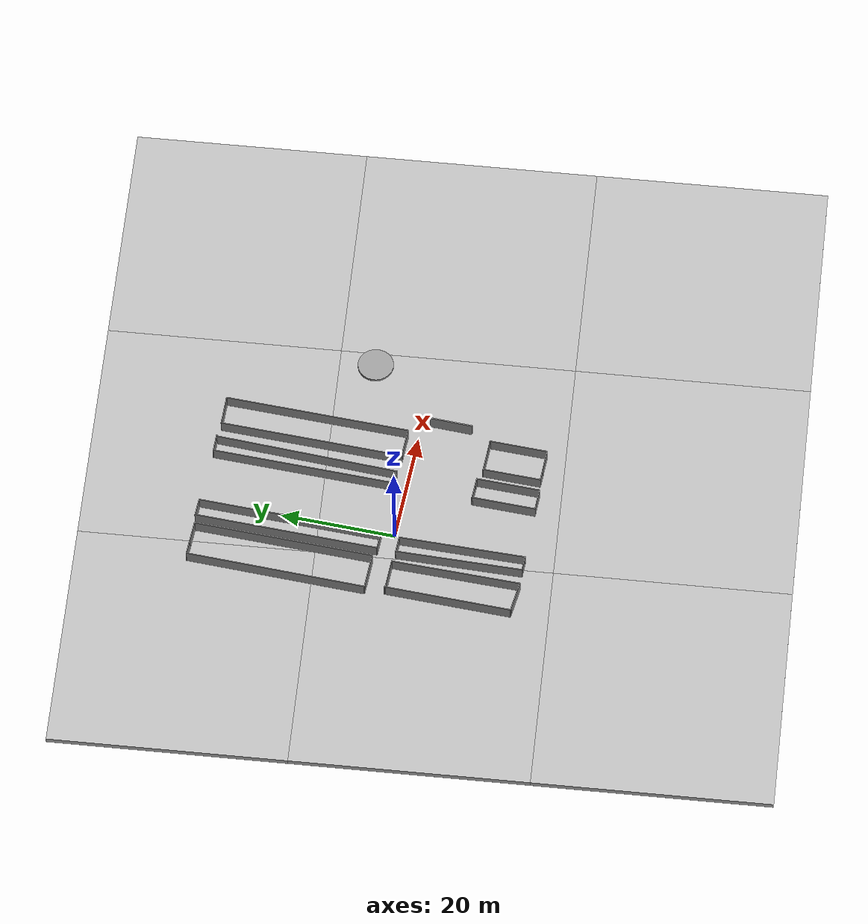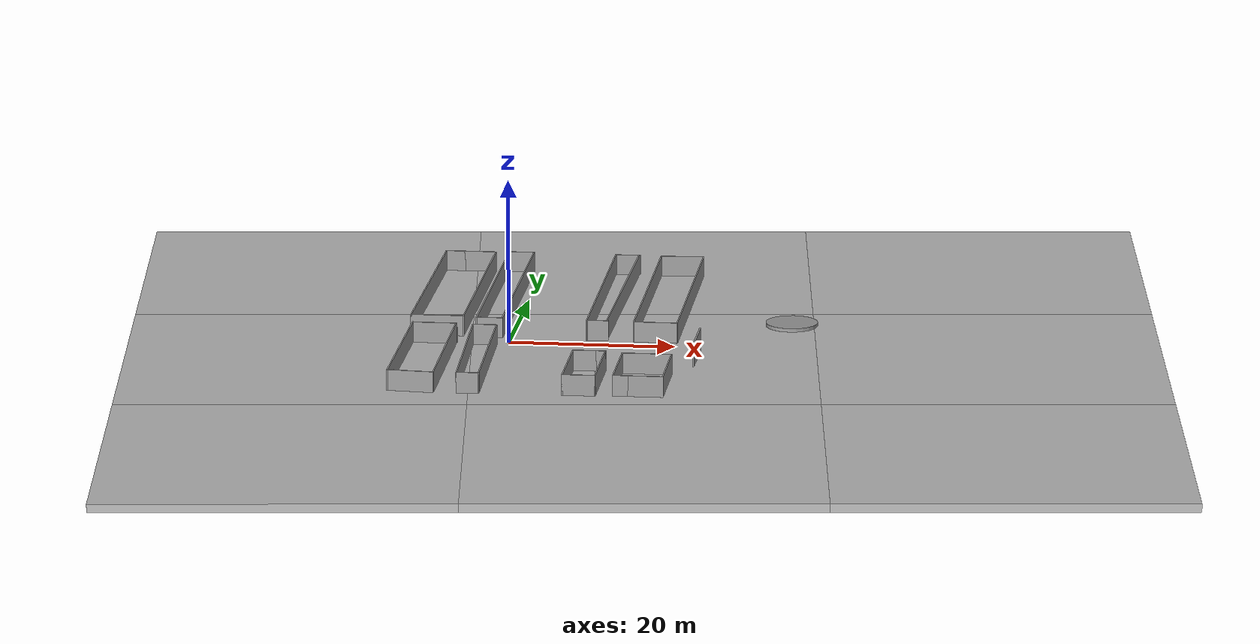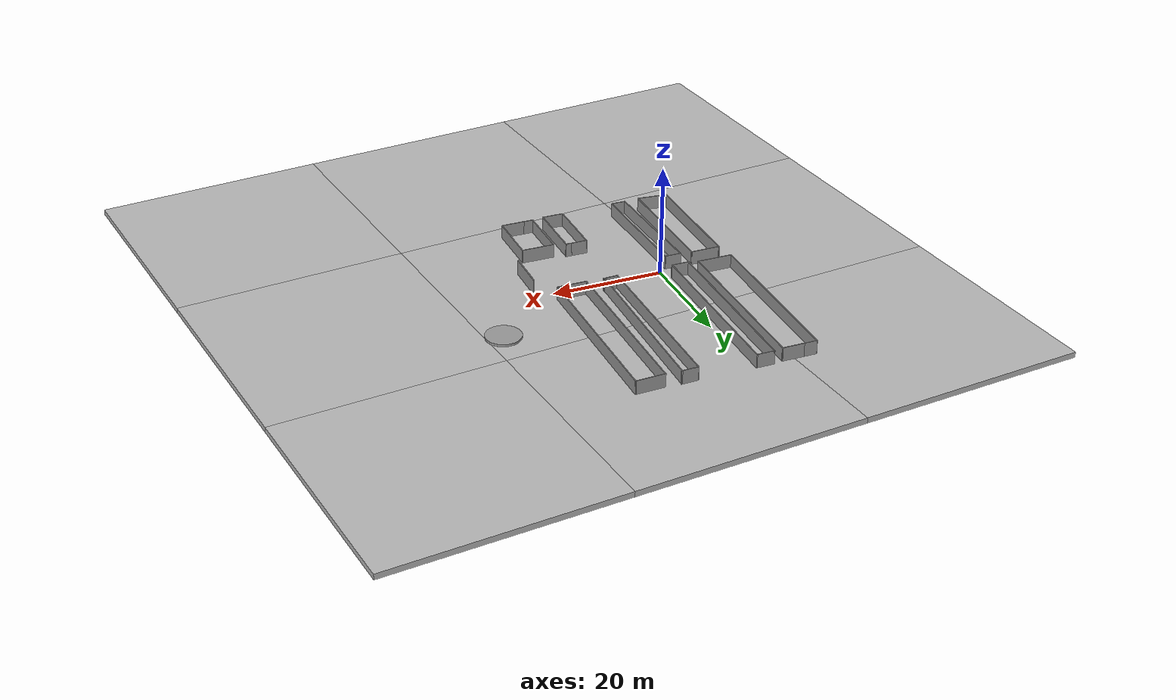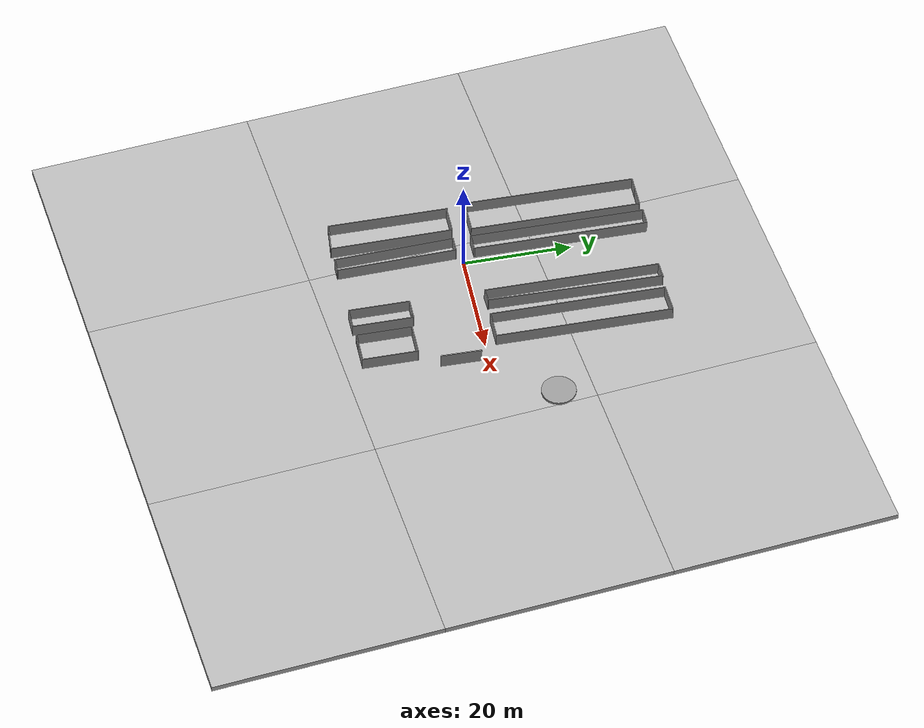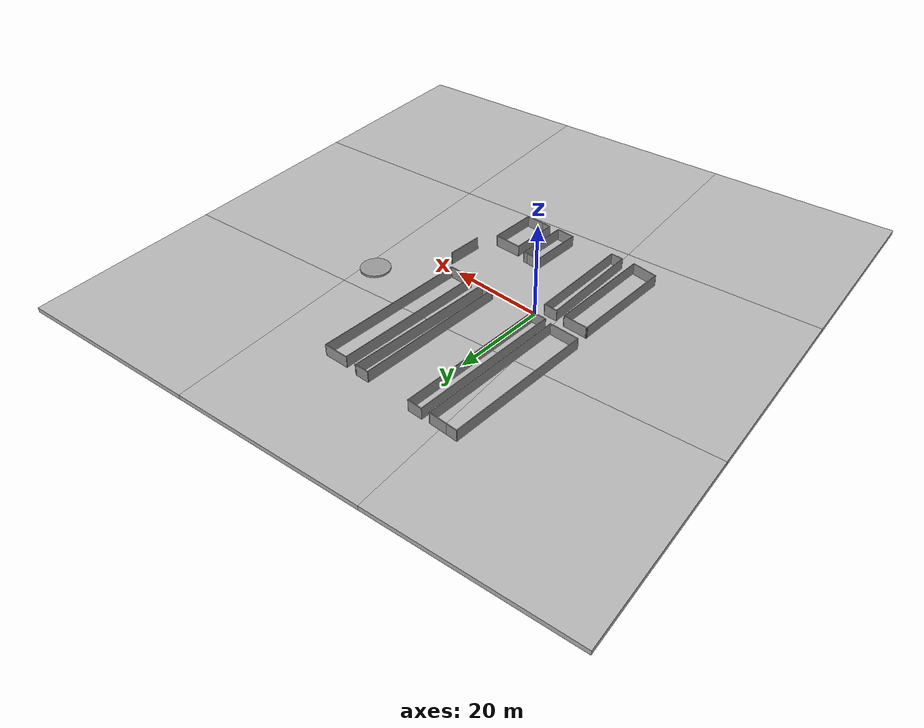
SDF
<sdf version="1.7">
 <world name="default">
  <model name="map_satellite_30.2884416_-97.7362034_100_100">
   <static>1</static>
   <link name="link">
    <collision name="collision">
     <pose>0 0 -0.5 0 -0 0</pose>
     <geometry><box><size>123.756 123.756 1</size></box></geometry>
    </collision>
    <visual name="visual0_0">
     <pose>-41.252 41.252 -0.5 0 -0 1.5708</pose>
     <geometry><box><size>41.252 41.252 1</size></box></geometry>
     <material>
      <script>
       <uri>model://map_satellite_30.2884416_-97.7362034_100_100/materials/scripts</uri>
       <uri>model://map_satellite_30.2884416_-97.7362034_100_100/materials/textures</uri>
       <name>map_satellite_30.2884416_-97.7362034_100_100/0_0</name>
      </script>
     </material>
    </visual>
    <visual name="visual0_1">
     <pose>0 41.252 -0.5 0 -0 1.5708</pose>
     <geometry><box><size>41.252 41.252 1</size></box></geometry>
     <material>
      <script>
       <uri>model://map_satellite_30.2884416_-97.7362034_100_100/materials/scripts</uri>
       <uri>model://map_satellite_30.2884416_-97.7362034_100_100/materials/textures</uri>
       <name>map_satellite_30.2884416_-97.7362034_100_100/0_1</name>
      </script>
     </material>
    </visual>
    <visual name="visual0_2">
     <pose>41.252 41.252 -0.5 0 -0 1.5708</pose>
     <geometry><box><size>41.252 41.252 1</size></box></geometry>
     <material>
      <script>
       <uri>model://map_satellite_30.2884416_-97.7362034_100_100/materials/scripts</uri>
       <uri>model://map_satellite_30.2884416_-97.7362034_100_100/materials/textures</uri>
       <name>map_satellite_30.2884416_-97.7362034_100_100/0_2</name>
      </script>
     </material>
    </visual>
    <visual name="visual1_0">
     <pose>-41.252 0 -0.5 0 -0 1.5708</pose>
     <geometry><box><size>41.252 41.252 1</size></box></geometry>
     <material>
      <script>
       <uri>model://map_satellite_30.2884416_-97.7362034_100_100/materials/scripts</uri>
       <uri>model://map_satellite_30.2884416_-97.7362034_100_100/materials/textures</uri>
       <name>map_satellite_30.2884416_-97.7362034_100_100/1_0</name>
      </script>
     </material>
    </visual>
    <visual name="visual1_1">
     <pose>0 0 -0.5 0 -0 1.5708</pose>
     <geometry><box><size>41.252 41.252 1</size></box></geometry>
     <material>
      <script>
       <uri>model://map_satellite_30.2884416_-97.7362034_100_100/materials/scripts</uri>
       <uri>model://map_satellite_30.2884416_-97.7362034_100_100/materials/textures</uri>
       <name>map_satellite_30.2884416_-97.7362034_100_100/1_1</name>
      </script>
     </material>
    </visual>
    <visual name="visual1_2">
     <pose>41.252 0 -0.5 0 -0 1.5708</pose>
     <geometry><box><size>41.252 41.252 1</size></box></geometry>
     <material>
      <script>
       <uri>model://map_satellite_30.2884416_-97.7362034_100_100/materials/scripts</uri>
       <uri>model://map_satellite_30.2884416_-97.7362034_100_100/materials/textures</uri>
       <name>map_satellite_30.2884416_-97.7362034_100_100/1_2</name>
      </script>
     </material>
    </visual>
    <visual name="visual2_0">
     <pose>-41.252 -41.252 -0.5 0 -0 1.5708</pose>
     <geometry><box><size>41.252 41.252 1</size></box></geometry>
     <material>
      <script>
       <uri>model://map_satellite_30.2884416_-97.7362034_100_100/materials/scripts</uri>
       <uri>model://map_satellite_30.2884416_-97.7362034_100_100/materials/textures</uri>
       <name>map_satellite_30.2884416_-97.7362034_100_100/2_0</name>
      </script>
     </material>
    </visual>
    <visual name="visual2_1">
     <pose>0 -41.252 -0.5 0 -0 1.5708</pose>
     <geometry><box><size>41.252 41.252 1</size></box></geometry>
     <material>
      <script>
       <uri>model://map_satellite_30.2884416_-97.7362034_100_100/materials/scripts</uri>
       <uri>model://map_satellite_30.2884416_-97.7362034_100_100/materials/textures</uri>
       <name>map_satellite_30.2884416_-97.7362034_100_100/2_1</name>
      </script>
     </material>
    </visual>
    <visual name="visual2_2">
     <pose>41.252 -41.252 -0.5 0 -0 1.5708</pose>
     <geometry><box><size>41.252 41.252 1</size></box></geometry>
     <material>
      <script>
       <uri>model://map_satellite_30.2884416_-97.7362034_100_100/materials/scripts</uri>
       <uri>model://map_satellite_30.2884416_-97.7362034_100_100/materials/textures</uri>
       <name>map_satellite_30.2884416_-97.7362034_100_100/2_2</name>
      </script>
     </material>
    </visual>
   </link>
   <pose>16.821 -5.54028 0 0 0 -1.46411</pose>
  </model>
  <model name="EER_Wall">
   <pose>4.31199 5.491 0 0 -0 0</pose>
   <link name="Wall_11">
    <collision name="Wall_11_Collision">
     <geometry><box><size>22.1191 0.15 2.5</size></box></geometry>
     <pose>0 0 1.25 0 -0 0</pose>
    </collision>
    <visual name="Wall_11_Visual">
     <pose>0 0 1.25 0 -0 0</pose>
     <geometry><box><size>22.1191 0.15 2.5</size></box></geometry>
     <material>
      <script><uri>file://media/materials/scripts/gazebo.material</uri><name>Gazebo/Grey</name></script>
      <ambient>1 1 1 1</ambient>
     </material>
     <meta><layer>0</layer></meta>
    </visual>
    <pose>-8.11358 -17.6289 0 0 -0 -1.53005</pose>
   </link>
   <link name="Wall_12">
    <collision name="Wall_12_Collision">
     <geometry><box><size>2.75 0.15 2.5</size></box></geometry>
     <pose>0 0 1.25 0 -0 0</pose>
    </collision>
    <visual name="Wall_12_Visual">
     <pose>0 0 1.25 0 -0 0</pose>
     <geometry><box><size>2.75 0.15 2.5</size></box></geometry>
     <material>
      <script><uri>file://media/materials/scripts/gazebo.material</uri><name>Gazebo/Grey</name></script>
      <ambient>1 1 1 1</ambient>
     </material>
     <meta><layer>0</layer></meta>
    </visual>
    <pose>-6.36612 -28.6043 0 0 -0 0</pose>
   </link>
   <link name="Wall_13">
    <collision name="Wall_13_Collision">
     <geometry><box><size>22.1401 0.15 2.5</size></box></geometry>
     <pose>0 0 1.25 0 -0 0</pose>
    </collision>
    <visual name="Wall_13_Visual">
     <pose>0 0 1.25 0 -0 0</pose>
     <geometry><box><size>22.1401 0.15 2.5</size></box></geometry>
     <material>
      <script><uri>file://media/materials/scripts/gazebo.material</uri><name>Gazebo/Grey</name></script>
      <ambient>1 1 1 1</ambient>
     </material>
     <meta><layer>0</layer></meta>
    </visual>
    <pose>-5.38858 -17.6139 0 0 -0 1.60013</pose>
   </link>
   <link name="Wall_14">
    <collision name="Wall_14_Collision">
     <geometry><box><size>3 0.15 2.5</size></box></geometry>
     <pose>0 0 1.25 0 -0 0</pose>
    </collision>
    <visual name="Wall_14_Visual">
     <pose>0 0 1.25 0 -0 0</pose>
     <geometry><box><size>3 0.15 2.5</size></box></geometry>
     <material>
      <script><uri>file://media/materials/scripts/gazebo.material</uri><name>Gazebo/Grey</name></script>
      <ambient>1 1 1 1</ambient>
     </material>
     <meta><layer>0</layer></meta>
    </visual>
    <pose>-7.13604 -6.6236 0 0 -0 3.14159</pose>
   </link>
   <link name="Wall_19">
    <collision name="Wall_19_Collision">
     <geometry><box><size>2.98805 0.15 2.5</size></box></geometry>
     <pose>0 0 1.25 0 -0 0</pose>
    </collision>
    <visual name="Wall_19_Visual">
     <pose>0 0 1.25 0 -0 0</pose>
     <geometry><box><size>2.98805 0.15 2.5</size></box></geometry>
     <material>
      <script><uri>file://media/materials/scripts/gazebo.material</uri><name>Gazebo/Grey</name></script>
      <ambient>1 1 1 1</ambient>
     </material>
     <meta><layer>0</layer></meta>
    </visual>
    <pose>6.16341 -17.235 0 0 -0 3.14159</pose>
   </link>
   <link name="Wall_2">
    <collision name="Wall_2_Collision">
     <geometry><box><size>22.25 0.15 2.5</size></box></geometry>
     <pose>0 0 1.25 0 -0 0</pose>
    </collision>
    <visual name="Wall_2_Visual">
     <pose>0 0 1.25 0 -0 0</pose>
     <geometry><box><size>22.25 0.15 2.5</size></box></geometry>
     <material>
      <script><uri>file://media/materials/scripts/gazebo.material</uri><name>Gazebo/Grey</name></script>
      <ambient>1 1 1 1</ambient>
     </material>
     <meta><layer>0</layer></meta>
    </visual>
    <pose>-15.8741 -17.272 0 0 -0 -1.5708</pose>
   </link>
   <link name="Wall_22">
    <collision name="Wall_22_Collision">
     <geometry><box><size>11.25 0.15 2.5</size></box></geometry>
     <pose>0 0 1.25 0 -0 0</pose>
    </collision>
    <visual name="Wall_22_Visual">
     <pose>0 0 1.25 0 -0 0</pose>
     <geometry><box><size>11.25 0.15 2.5</size></box></geometry>
     <material>
      <script><uri>file://media/materials/scripts/gazebo.material</uri><name>Gazebo/Grey</name></script>
      <ambient>1 1 1 1</ambient>
     </material>
     <meta><layer>0</layer></meta>
    </visual>
    <pose>4.74438 -22.785 0 0 -0 -1.5708</pose>
   </link>
   <link name="Wall_23">
    <collision name="Wall_23_Collision">
     <geometry><box><size>4 0.15 2.5</size></box></geometry>
     <pose>0 0 1.25 0 -0 0</pose>
    </collision>
    <visual name="Wall_23_Visual">
     <pose>0 0 1.25 0 -0 0</pose>
     <geometry><box><size>4 0.15 2.5</size></box></geometry>
     <material>
      <script><uri>file://media/materials/scripts/gazebo.material</uri><name>Gazebo/Grey</name></script>
      <ambient>1 1 1 1</ambient>
     </material>
     <meta><layer>0</layer></meta>
    </visual>
    <pose>6.66938 -28.335 0 0 -0 0</pose>
   </link>
   <link name="Wall_24">
    <collision name="Wall_24_Collision">
     <geometry><box><size>11.25 0.15 2.5</size></box></geometry>
     <pose>0 0 1.25 0 -0 0</pose>
    </collision>
    <visual name="Wall_24_Visual">
     <pose>0 0 1.25 0 -0 0</pose>
     <geometry><box><size>11.25 0.15 2.5</size></box></geometry>
     <material>
      <script><uri>file://media/materials/scripts/gazebo.material</uri><name>Gazebo/Grey</name></script>
      <ambient>1 1 1 1</ambient>
     </material>
     <meta><layer>0</layer></meta>
    </visual>
    <pose>8.59438 -22.785 0 0 -0 1.5708</pose>
   </link>
   <link name="Wall_25">
    <collision name="Wall_25_Collision">
     <geometry><box><size>1.16195 0.15 2.5</size></box></geometry>
     <pose>0 0 1.25 0 -0 0</pose>
    </collision>
    <visual name="Wall_25_Visual">
     <pose>0 0 1.25 0 -0 0</pose>
     <geometry><box><size>1.16195 0.15 2.5</size></box></geometry>
     <material>
      <script><uri>file://media/materials/scripts/gazebo.material</uri><name>Gazebo/Grey</name></script>
      <ambient>1 1 1 1</ambient>
     </material>
     <meta><layer>0</layer></meta>
    </visual>
    <pose>8.0884 -17.235 0 0 -0 -3.14159</pose>
   </link>
   <link name="Wall_27">
    <collision name="Wall_27_Collision">
     <geometry><box><size>4.25 0.15 2.5</size></box></geometry>
     <pose>0 0 1.25 0 -0 0</pose>
    </collision>
    <visual name="Wall_27_Visual">
     <pose>0 0 1.25 0 -0 0</pose>
     <geometry><box><size>4.25 0.15 2.5</size></box></geometry>
     <material>
      <script><uri>file://media/materials/scripts/gazebo.material</uri><name>Gazebo/Grey</name></script>
      <ambient>1 1 1 1</ambient>
     </material>
     <meta><layer>0</layer></meta>
    </visual>
    <pose>14.4877 -28.0488 0 0 -0 0</pose>
   </link>
   <link name="Wall_28">
    <collision name="Wall_28_Collision">
     <geometry><box><size>10.25 0.15 2.5</size></box></geometry>
     <pose>0 0 1.25 0 -0 0</pose>
    </collision>
    <visual name="Wall_28_Visual">
     <pose>0 0 1.25 0 -0 0</pose>
     <geometry><box><size>10.25 0.15 2.5</size></box></geometry>
     <material>
      <script><uri>file://media/materials/scripts/gazebo.material</uri><name>Gazebo/Grey</name></script>
      <ambient>1 1 1 1</ambient>
     </material>
     <meta><layer>0</layer></meta>
    </visual>
    <pose>16.5377 -22.9988 0 0 -0 1.5708</pose>
   </link>
   <link name="Wall_29">
    <collision name="Wall_29_Collision">
     <geometry><box><size>6 0.15 2.5</size></box></geometry>
     <pose>0 0 1.25 0 -0 0</pose>
    </collision>
    <visual name="Wall_29_Visual">
     <pose>0 0 1.25 0 -0 0</pose>
     <geometry><box><size>6 0.15 2.5</size></box></geometry>
     <material>
      <script><uri>file://media/materials/scripts/gazebo.material</uri><name>Gazebo/Grey</name></script>
      <ambient>1 1 1 1</ambient>
     </material>
     <meta><layer>0</layer></meta>
    </visual>
    <pose>13.6127 -17.9488 0 0 -0 3.14159</pose>
   </link>
   <link name="Wall_3">
    <collision name="Wall_3_Collision">
     <geometry><box><size>5.57576 0.15 2.5</size></box></geometry>
     <pose>0 0 1.25 0 -0 0</pose>
    </collision>
    <visual name="Wall_3_Visual">
     <pose>0 0 1.25 0 -0 0</pose>
     <geometry><box><size>5.57576 0.15 2.5</size></box></geometry>
     <material>
      <script><uri>file://media/materials/scripts/gazebo.material</uri><name>Gazebo/Grey</name></script>
      <ambient>1 1 1 1</ambient>
     </material>
     <meta><layer>0</layer></meta>
    </visual>
    <pose>-13.1737 -28.5298 0 0 -0 -0.095957</pose>
   </link>
   <link name="Wall_30">
    <collision name="Wall_30_Collision">
     <geometry><box><size>10.25 0.15 2.5</size></box></geometry>
     <pose>0 0 1.25 0 -0 0</pose>
    </collision>
    <visual name="Wall_30_Visual">
     <pose>0 0 1.25 0 -0 0</pose>
     <geometry><box><size>10.25 0.15 2.5</size></box></geometry>
     <material>
      <script><uri>file://media/materials/scripts/gazebo.material</uri><name>Gazebo/Grey</name></script>
      <ambient>1 1 1 1</ambient>
     </material>
     <meta><layer>0</layer></meta>
    </visual>
    <pose>10.6877 -22.9988 0 0 -0 -1.5708</pose>
   </link>
   <link name="Wall_31">
    <collision name="Wall_31_Collision">
     <geometry><box><size>1.9 0.15 2.5</size></box></geometry>
     <pose>0 0 1.25 0 -0 0</pose>
    </collision>
    <visual name="Wall_31_Visual">
     <pose>0 0 1.25 0 -0 0</pose>
     <geometry><box><size>1.9 0.15 2.5</size></box></geometry>
     <material>
      <script><uri>file://media/materials/scripts/gazebo.material</uri><name>Gazebo/Grey</name></script>
      <ambient>1 1 1 1</ambient>
     </material>
     <meta><layer>0</layer></meta>
    </visual>
    <pose>11.5627 -28.0488 0 0 -0 0</pose>
   </link>
   <link name="Wall_34">
    <collision name="Wall_34_Collision">
     <geometry><box><size>5.25 0.15 2.5</size></box></geometry>
     <pose>0 0 1.25 0 -0 0</pose>
    </collision>
    <visual name="Wall_34_Visual">
     <pose>0 0 1.25 0 -0 0</pose>
     <geometry><box><size>5.25 0.15 2.5</size></box></geometry>
     <material>
      <script><uri>file://media/materials/scripts/gazebo.material</uri><name>Gazebo/Grey</name></script>
      <ambient>1 1 1 1</ambient>
     </material>
     <meta><layer>0</layer></meta>
    </visual>
    <pose>13.1917 -3.55697 0 0 -0 0</pose>
   </link>
   <link name="Wall_35">
    <collision name="Wall_35_Collision">
     <geometry><box><size>32.5 0.15 2.5</size></box></geometry>
     <pose>0 0 1.25 0 -0 0</pose>
    </collision>
    <visual name="Wall_35_Visual">
     <pose>0 0 1.25 0 -0 0</pose>
     <geometry><box><size>32.5 0.15 2.5</size></box></geometry>
     <material>
      <script><uri>file://media/materials/scripts/gazebo.material</uri><name>Gazebo/Grey</name></script>
      <ambient>1 1 1 1</ambient>
     </material>
     <meta><layer>0</layer></meta>
    </visual>
    <pose>15.7417 12.618 0 0 -0 1.5708</pose>
   </link>
   <link name="Wall_36">
    <collision name="Wall_36_Collision">
     <geometry><box><size>5.39507 0.15 2.5</size></box></geometry>
     <pose>0 0 1.25 0 -0 0</pose>
    </collision>
    <visual name="Wall_36_Visual">
     <pose>0 0 1.25 0 -0 0</pose>
     <geometry><box><size>5.39507 0.15 2.5</size></box></geometry>
     <material>
      <script><uri>file://media/materials/scripts/gazebo.material</uri><name>Gazebo/Grey</name></script>
      <ambient>1 1 1 1</ambient>
     </material>
     <meta><layer>0</layer></meta>
    </visual>
    <pose>13.1222 28.668 0 0 -0 -3.09389</pose>
   </link>
   <link name="Wall_37">
    <collision name="Wall_37_Collision">
     <geometry><box><size>32.25 0.15 2.5</size></box></geometry>
     <pose>0 0 1.25 0 -0 0</pose>
    </collision>
    <visual name="Wall_37_Visual">
     <pose>0 0 1.25 0 -0 0</pose>
     <geometry><box><size>32.25 0.15 2.5</size></box></geometry>
     <material>
      <script><uri>file://media/materials/scripts/gazebo.material</uri><name>Gazebo/Grey</name></script>
      <ambient>1 1 1 1</ambient>
     </material>
     <meta><layer>0</layer></meta>
    </visual>
    <pose>10.5026 12.478 0 0 -0 -1.5708</pose>
   </link>
   <link name="Wall_39">
    <collision name="Wall_39_Collision">
     <geometry><box><size>2.67691 0.15 2.5</size></box></geometry>
     <pose>0 0 1.25 0 -0 0</pose>
    </collision>
    <visual name="Wall_39_Visual">
     <pose>0 0 1.25 0 -0 0</pose>
     <geometry><box><size>2.67691 0.15 2.5</size></box></geometry>
     <material>
      <script><uri>file://media/materials/scripts/gazebo.material</uri><name>Gazebo/Grey</name></script>
      <ambient>1 1 1 1</ambient>
     </material>
     <meta><layer>0</layer></meta>
    </visual>
    <pose>6.06334 -3.40028 0 0 -0 -3.09489</pose>
   </link>
   <link name="Wall_4">
    <collision name="Wall_4_Collision">
     <geometry><box><size>22.5122 0.15 2.5</size></box></geometry>
     <pose>0 0 1.25 0 -0 0</pose>
    </collision>
    <visual name="Wall_4_Visual">
     <pose>0 0 1.25 0 -0 0</pose>
     <geometry><box><size>22.5122 0.15 2.5</size></box></geometry>
     <material>
      <script><uri>file://media/materials/scripts/gazebo.material</uri><name>Gazebo/Grey</name></script>
      <ambient>1 1 1 1</ambient>
     </material>
     <meta><layer>0</layer></meta>
    </visual>
    <pose>-10.5155 -17.5404 0 0 -0 1.58074</pose>
   </link>
   <link name="Wall_40">
    <collision name="Wall_40_Collision">
     <geometry><box><size>32.25 0.15 2.5</size></box></geometry>
     <pose>0 0 1.25 0 -0 0</pose>
    </collision>
    <visual name="Wall_40_Visual">
     <pose>0 0 1.25 0 -0 0</pose>
     <geometry><box><size>32.25 0.15 2.5</size></box></geometry>
     <material>
      <script><uri>file://media/materials/scripts/gazebo.material</uri><name>Gazebo/Grey</name></script>
      <ambient>1 1 1 1</ambient>
     </material>
     <meta><layer>0</layer></meta>
    </visual>
    <pose>4.80126 12.5907 0 0 -0 1.5708</pose>
   </link>
   <link name="Wall_41">
    <collision name="Wall_41_Collision">
     <geometry><box><size>3.17645 0.15 2.5</size></box></geometry>
     <pose>0 0 1.25 0 -0 0</pose>
    </collision>
    <visual name="Wall_41_Visual">
     <pose>0 0 1.25 0 -0 0</pose>
     <geometry><box><size>3.17645 0.15 2.5</size></box></geometry>
     <material>
      <script><uri>file://media/materials/scripts/gazebo.material</uri><name>Gazebo/Grey</name></script>
      <ambient>1 1 1 1</ambient>
     </material>
     <meta><layer>0</layer></meta>
    </visual>
    <pose>6.31334 28.6997 0 0 -0 0.038992</pose>
   </link>
   <link name="Wall_42">
    <collision name="Wall_42_Collision">
     <geometry><box><size>32.2539 0.15 2.5</size></box></geometry>
     <pose>0 0 1.25 0 -0 0</pose>
    </collision>
    <visual name="Wall_42_Visual">
     <pose>0 0 1.25 0 -0 0</pose>
     <geometry><box><size>32.2539 0.15 2.5</size></box></geometry>
     <material>
      <script><uri>file://media/materials/scripts/gazebo.material</uri><name>Gazebo/Grey</name></script>
      <ambient>1 1 1 1</ambient>
     </material>
     <meta><layer>0</layer></meta>
    </visual>
    <pose>7.45743 12.7087 0 0 -0 -1.58637</pose>
   </link>
   <link name="Wall_44">
    <collision name="Wall_44_Collision">
     <geometry><box><size>3.25 0.15 2.5</size></box></geometry>
     <pose>0 0 1.25 0 -0 0</pose>
    </collision>
    <visual name="Wall_44_Visual">
     <pose>0 0 1.25 0 -0 0</pose>
     <geometry><box><size>3.25 0.15 2.5</size></box></geometry>
     <material>
      <script><uri>file://media/materials/scripts/gazebo.material</uri><name>Gazebo/Grey</name></script>
      <ambient>1 1 1 1</ambient>
     </material>
     <meta><layer>0</layer></meta>
    </visual>
    <pose>-6.99735 -3.31199 0 0 -0 3.14159</pose>
   </link>
   <link name="Wall_45">
    <collision name="Wall_45_Collision">
     <geometry><box><size>32.25 0.15 2.5</size></box></geometry>
     <pose>0 0 1.25 0 -0 0</pose>
    </collision>
    <visual name="Wall_45_Visual">
     <pose>0 0 1.25 0 -0 0</pose>
     <geometry><box><size>32.25 0.15 2.5</size></box></geometry>
     <material>
      <script><uri>file://media/materials/scripts/gazebo.material</uri><name>Gazebo/Grey</name></script>
      <ambient>1 1 1 1</ambient>
     </material>
     <meta><layer>0</layer></meta>
    </visual>
    <pose>-8.54735 12.738 0 0 -0 1.5708</pose>
   </link>
   <link name="Wall_46">
    <collision name="Wall_46_Collision">
     <geometry><box><size>3.25 0.15 2.5</size></box></geometry>
     <pose>0 0 1.25 0 -0 0</pose>
    </collision>
    <visual name="Wall_46_Visual">
     <pose>0 0 1.25 0 -0 0</pose>
     <geometry><box><size>3.25 0.15 2.5</size></box></geometry>
     <material>
      <script><uri>file://media/materials/scripts/gazebo.material</uri><name>Gazebo/Grey</name></script>
      <ambient>1 1 1 1</ambient>
     </material>
     <meta><layer>0</layer></meta>
    </visual>
    <pose>-6.99735 28.788 0 0 -0 0</pose>
   </link>
   <link name="Wall_47">
    <collision name="Wall_47_Collision">
     <geometry><box><size>32 0.15 2.5</size></box></geometry>
     <pose>0 0 1.25 0 -0 0</pose>
    </collision>
    <visual name="Wall_47_Visual">
     <pose>0 0 1.25 0 -0 0</pose>
     <geometry><box><size>32 0.15 2.5</size></box></geometry>
     <material>
      <script><uri>file://media/materials/scripts/gazebo.material</uri><name>Gazebo/Grey</name></script>
      <ambient>1 1 1 1</ambient>
     </material>
     <meta><layer>0</layer></meta>
    </visual>
    <pose>-5.44735 12.863 0 0 -0 -1.5708</pose>
   </link>
   <link name="Wall_49">
    <collision name="Wall_49_Collision">
     <geometry><box><size>6.5 0.15 2.5</size></box></geometry>
     <pose>0 0 1.25 0 -0 0</pose>
    </collision>
    <visual name="Wall_49_Visual">
     <pose>0 0 1.25 0 -0 0</pose>
     <geometry><box><size>6.5 0.15 2.5</size></box></geometry>
     <material>
      <script><uri>file://media/materials/scripts/gazebo.material</uri><name>Gazebo/Grey</name></script>
      <ambient>1 1 1 1</ambient>
     </material>
     <meta><layer>0</layer></meta>
    </visual>
    <pose>-13.3624 -2.84008 0 0 -0 0</pose>
   </link>
   <link name="Wall_5">
    <collision name="Wall_5_Collision">
     <geometry><box><size>5.5 0.15 2.5</size></box></geometry>
     <pose>0 0 1.25 0 -0 0</pose>
    </collision>
    <visual name="Wall_5_Visual">
     <pose>0 0 1.25 0 -0 0</pose>
     <geometry><box><size>5.5 0.15 2.5</size></box></geometry>
     <material>
      <script><uri>file://media/materials/scripts/gazebo.material</uri><name>Gazebo/Grey</name></script>
      <ambient>1 1 1 1</ambient>
     </material>
     <meta><layer>0</layer></meta>
    </visual>
    <pose>-13.2495 -6.36021 0 0 -0 3.14159</pose>
   </link>
   <link name="Wall_50">
    <collision name="Wall_50_Collision">
     <geometry><box><size>31.5 0.15 2.5</size></box></geometry>
     <pose>0 0 1.25 0 -0 0</pose>
    </collision>
    <visual name="Wall_50_Visual">
     <pose>0 0 1.25 0 -0 0</pose>
     <geometry><box><size>31.5 0.15 2.5</size></box></geometry>
     <material>
      <script><uri>file://media/materials/scripts/gazebo.material</uri><name>Gazebo/Grey</name></script>
      <ambient>1 1 1 1</ambient>
     </material>
     <meta><layer>0</layer></meta>
    </visual>
    <pose>-10.1874 12.8349 0 0 -0 1.5708</pose>
   </link>
   <link name="Wall_51">
    <collision name="Wall_51_Collision">
     <geometry><box><size>4 0.15 2.5</size></box></geometry>
     <pose>0 0 1.25 0 -0 0</pose>
    </collision>
    <visual name="Wall_51_Visual">
     <pose>0 0 1.25 0 -0 0</pose>
     <geometry><box><size>4 0.15 2.5</size></box></geometry>
     <material>
      <script><uri>file://media/materials/scripts/gazebo.material</uri><name>Gazebo/Grey</name></script>
      <ambient>1 1 1 1</ambient>
     </material>
     <meta><layer>0</layer></meta>
    </visual>
    <pose>-12.1124 28.5099 0 0 -0 3.14159</pose>
   </link>
   <link name="Wall_52">
    <collision name="Wall_52_Collision">
     <geometry><box><size>2.5 0.15 2.5</size></box></geometry>
     <pose>0 0 1.25 0 -0 0</pose>
    </collision>
    <visual name="Wall_52_Visual">
     <pose>0 0 1.25 0 -0 0</pose>
     <geometry><box><size>2.5 0.15 2.5</size></box></geometry>
     <material>
      <script><uri>file://media/materials/scripts/gazebo.material</uri><name>Gazebo/Grey</name></script>
      <ambient>1 1 1 1</ambient>
     </material>
     <meta><layer>0</layer></meta>
    </visual>
    <pose>-15.2124 28.5099 0 0 -0 3.14159</pose>
   </link>
   <link name="Wall_53">
    <collision name="Wall_53_Collision">
     <geometry><box><size>31.5 0.15 2.5</size></box></geometry>
     <pose>0 0 1.25 0 -0 0</pose>
    </collision>
    <visual name="Wall_53_Visual">
     <pose>0 0 1.25 0 -0 0</pose>
     <geometry><box><size>31.5 0.15 2.5</size></box></geometry>
     <material>
      <script><uri>file://media/materials/scripts/gazebo.material</uri><name>Gazebo/Grey</name></script>
      <ambient>1 1 1 1</ambient>
     </material>
     <meta><layer>0</layer></meta>
    </visual>
    <pose>-16.4624 12.8349 0 0 -0 -1.57558</pose>
   </link>
   <static>1</static>
  </model>
  <model name="grey_wall">
   <static>1</static>
   <link name="link">
    <pose>0 0 1.4 0 -0 0</pose>
    <collision name="collision"><geometry><box><size>7.5 0.2 2.8</size></box></geometry></collision>
    <visual name="visual">
     <cast_shadows>0</cast_shadows>
     <geometry><box><size>7.5 0.2 2.8</size></box></geometry>
     <material>
      <script>
       <uri>model://grey_wall/materials/scripts</uri>
       <uri>model://grey_wall/materials/textures</uri>
       <name>vrc/grey_wall</name>
      </script>
     </material>
    </visual>
   </link>
   <pose>23.0955 -5.08514 -0 0 -0 1.55914</pose>
  </model>
  <model name="unit_cylinder_wide">
   <link name="link">
    <inertial>
     <mass>17.0958</mass>
     <inertia><ixx>42.6178</ixx><ixy>0</ixy><ixz>0</ixz><iyy>42.6178</iyy><iyz>0</iyz><izz>84.7056</izz></inertia>
    </inertial>
    <visual name="visual">
     <geometry><cylinder><radius>3.14793</radius><length>0.431325</length></cylinder></geometry>
     <material>
      <script><name>Gazebo/Grey</name><uri>file://media/materials/scripts/gazebo.material</uri></script>
      <shader type="pixel"/>
     </material>
    </visual>
    <collision name="collision">
     <geometry><cylinder><radius>3.14793</radius><length>0.431325</length></cylinder></geometry>
     <surface>
      <friction>
       <ode><mu>1</mu><mu2>1</mu2><fdir1>0 0 0</fdir1><slip1>0</slip1><slip2>0</slip2></ode>
       <torsional>
        <coefficient>1</coefficient>
        <patch_radius>0</patch_radius>
        <surface_radius>0</surface_radius>
        <use_patch_radius>1</use_patch_radius>
        <ode><slip>0</slip></ode>
       </torsional>
      </friction>
      <bounce><restitution_coefficient>0</restitution_coefficient><threshold>1e+06</threshold></bounce>
      <contact>
       <collide_without_contact>0</collide_without_contact>
       <collide_without_contact_bitmask>1</collide_without_contact_bitmask>
       <collide_bitmask>1</collide_bitmask>
       <ode>
        <soft_cfm>0</soft_cfm>
        <soft_erp>0.2</soft_erp>
        <kp>1e+13</kp>
        <kd>1</kd>
        <max_vel>0.01</max_vel>
        <min_depth>0</min_depth>
       </ode>
       <bullet>
        <split_impulse>1</split_impulse>
        <split_impulse_penetration_threshold>-0.01</split_impulse_penetration_threshold>
        <soft_cfm>0</soft_cfm>
        <soft_erp>0.2</soft_erp>
        <kp>1e+13</kp>
        <kd>1</kd>
       </bullet>
      </contact>
     </surface>
    </collision>
   </link>
   <static>0</static>
   <pose>33.1198 10.5483 0.5 0 -0 0</pose>
  </model>
 </world>
</sdf>
